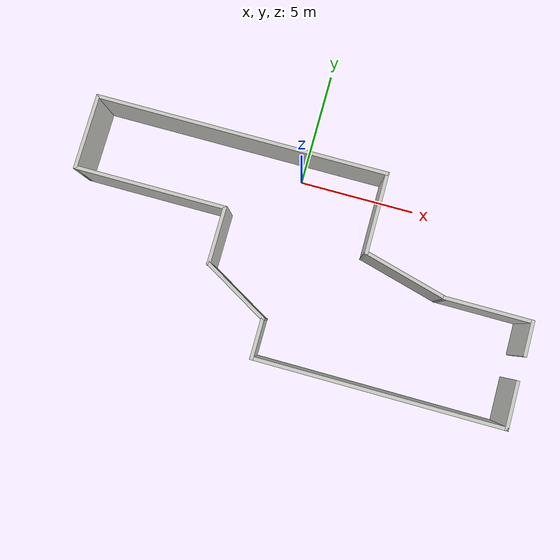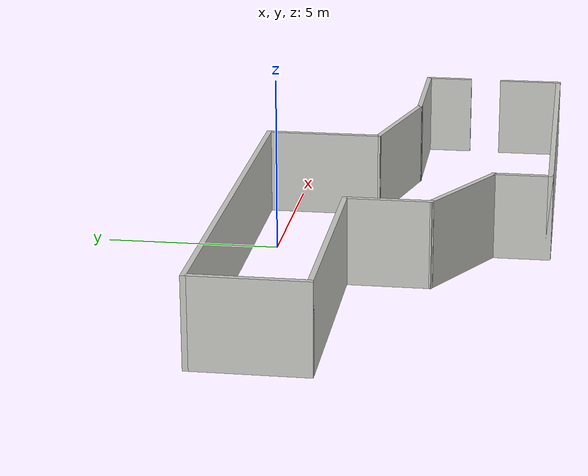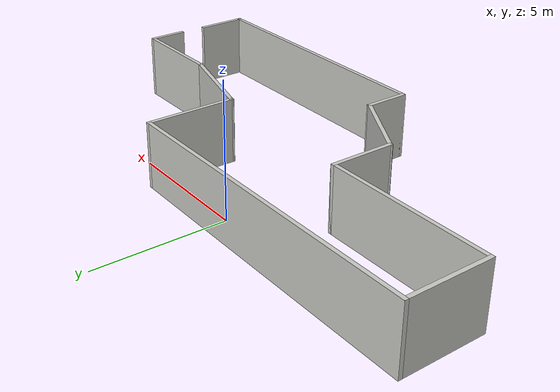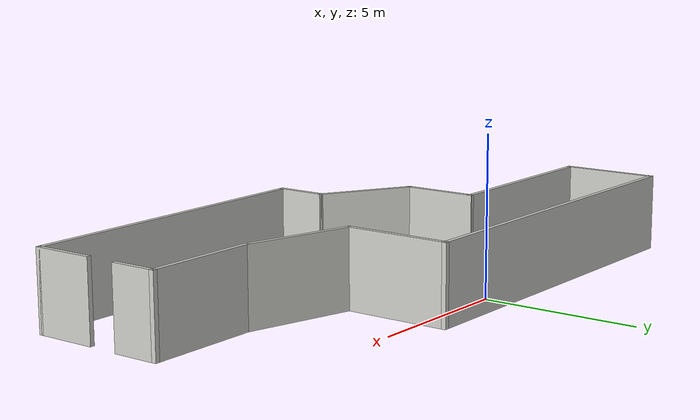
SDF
<?xml version='1.0'?>
<sdf version='1.7'>
  <model name='z-shaped-room'>
    <pose>0.751309 -3.50561 0 0 -0 0</pose>
    <link name='Wall_0'>
      <collision name='Wall_0_Collision'>
        <geometry>
          <box>
            <size>1.5 0.15 2.5</size>
          </box>
        </geometry>
        <pose>0 0 1.25 0 -0 0</pose>
      </collision>
      <visual name='Wall_0_Visual'>
        <pose>0 0 1.25 0 -0 0</pose>
        <geometry>
          <box>
            <size>1.5 0.15 2.5</size>
          </box>
        </geometry>
        <material>
          <script>
            <uri>file://media/materials/scripts/gazebo.material</uri>
            <name>Gazebo/CeilingTiled</name>
          </script>
          <ambient>1 1 1 1</ambient>
        </material>
        <meta>
          <layer>0</layer>
        </meta>
      </visual>
      <pose>9.71367 -0.656749 0 0 -0 1.5708</pose>
    </link>
    <link name='Wall_1'>
      <collision name='Wall_1_Collision'>
        <geometry>
          <box>
            <size>3.75 0.15 2.5</size>
          </box>
        </geometry>
        <pose>0 0 1.25 0 -0 0</pose>
      </collision>
      <visual name='Wall_1_Visual'>
        <pose>0 0 1.25 0 -0 0</pose>
        <geometry>
          <box>
            <size>3.75 0.15 2.5</size>
          </box>
        </geometry>
        <material>
          <script>
            <uri>file://media/materials/scripts/gazebo.material</uri>
            <name>Gazebo/CeilingTiled</name>
          </script>
          <ambient>1 1 1 1</ambient>
        </material>
        <meta>
          <layer>0</layer>
        </meta>
      </visual>
      <pose>7.91367 0.018251 0 0 -0 3.14159</pose>
    </link>
    <link name='Wall_10'>
      <collision name='Wall_10_Collision'>
        <geometry>
          <box>
            <size>10.5 0.15 2.5</size>
          </box>
        </geometry>
        <pose>0 0 1.25 0 -0 0</pose>
      </collision>
      <visual name='Wall_10_Visual'>
        <pose>0 0 1.25 0 -0 0</pose>
        <geometry>
          <box>
            <size>10.5 0.15 2.5</size>
          </box>
        </geometry>
        <material>
          <script>
            <uri>file://media/materials/scripts/gazebo.material</uri>
            <name>Gazebo/CeilingTiled</name>
          </script>
          <ambient>1 1 1 1</ambient>
        </material>
        <meta>
          <layer>0</layer>
        </meta>
      </visual>
      <pose>4.49601 -4.3 0 0 -0 0</pose>
    </link>
    <link name='Wall_11'>
      <collision name='Wall_11_Collision'>
        <geometry>
          <box>
            <size>2 0.15 2.5</size>
          </box>
        </geometry>
        <pose>0 0 1.25 0 -0 0</pose>
      </collision>
      <visual name='Wall_11_Visual'>
        <pose>0 0 1.25 0 -0 0</pose>
        <geometry>
          <box>
            <size>2 0.15 2.5</size>
          </box>
        </geometry>
        <material>
          <script>
            <uri>file://media/materials/scripts/gazebo.material</uri>
            <name>Gazebo/CeilingTiled</name>
          </script>
          <ambient>1 1 1 1</ambient>
        </material>
        <meta>
          <layer>0</layer>
        </meta>
      </visual>
      <pose>9.67101 -3.375 0 0 -0 1.5708</pose>
    </link>
    <link name='Wall_2'>
      <collision name='Wall_2_Collision'>
        <geometry>
          <box>
            <size>3.75 0.15 2.5</size>
          </box>
        </geometry>
        <pose>0 0 1.25 0 -0 0</pose>
      </collision>
      <visual name='Wall_2_Visual'>
        <pose>0 0 1.25 0 -0 0</pose>
        <geometry>
          <box>
            <size>3.75 0.15 2.5</size>
          </box>
        </geometry>
        <material>
          <script>
            <uri>file://media/materials/scripts/gazebo.material</uri>
            <name>Gazebo/CeilingTiled</name>
          </script>
          <ambient>1 1 1 1</ambient>
        </material>
        <meta>
          <layer>0</layer>
        </meta>
      </visual>
      <pose>4.375 0.484126 0 0 -0 2.87979</pose>
    </link>
    <link name='Wall_3'>
      <collision name='Wall_3_Collision'>
        <geometry>
          <box>
            <size>3.5 0.15 2.5</size>
          </box>
        </geometry>
        <pose>0 0 1.25 0 -0 0</pose>
      </collision>
      <visual name='Wall_3_Visual'>
        <pose>0 0 1.25 0 -0 0</pose>
        <geometry>
          <box>
            <size>3.5 0.15 2.5</size>
          </box>
        </geometry>
        <material>
          <script>
            <uri>file://media/materials/scripts/gazebo.material</uri>
            <name>Gazebo/CeilingTiled</name>
          </script>
          <ambient>1 1 1 1</ambient>
        </material>
        <meta>
          <layer>0</layer>
        </meta>
      </visual>
      <pose>2.63633 2.625 0 0 -0 1.5708</pose>
    </link>
    <link name='Wall_4'>
      <collision name='Wall_4_Collision'>
        <geometry>
          <box>
            <size>12.5 0.15 2.5</size>
          </box>
        </geometry>
        <pose>0 0 1.25 0 -0 0</pose>
      </collision>
      <visual name='Wall_4_Visual'>
        <pose>0 0 1.25 0 -0 0</pose>
        <geometry>
          <box>
            <size>12.5 0.15 2.5</size>
          </box>
        </geometry>
        <material>
          <script>
            <uri>file://media/materials/scripts/gazebo.material</uri>
            <name>Gazebo/CeilingTiled</name>
          </script>
          <ambient>1 1 1 1</ambient>
        </material>
        <meta>
          <layer>0</layer>
        </meta>
      </visual>
      <pose>-3.53867 4.3 0 0 -0 3.14159</pose>
    </link>
    <link name='Wall_5'>
      <collision name='Wall_5_Collision'>
        <geometry>
          <box>
            <size>3.25 0.15 2.5</size>
          </box>
        </geometry>
        <pose>0 0 1.25 0 -0 0</pose>
      </collision>
      <visual name='Wall_5_Visual'>
        <pose>0 0 1.25 0 -0 0</pose>
        <geometry>
          <box>
            <size>3.25 0.15 2.5</size>
          </box>
        </geometry>
        <material>
          <script>
            <uri>file://media/materials/scripts/gazebo.material</uri>
            <name>Gazebo/CeilingTiled</name>
          </script>
          <ambient>1 1 1 1</ambient>
        </material>
        <meta>
          <layer>0</layer>
        </meta>
      </visual>
      <pose>-9.71367 2.75 0 0 -0 -1.5708</pose>
    </link>
    <link name='Wall_6'>
      <collision name='Wall_6_Collision'>
        <geometry>
          <box>
            <size>6.5 0.15 2.5</size>
          </box>
        </geometry>
        <pose>0 0 1.25 0 -0 0</pose>
      </collision>
      <visual name='Wall_6_Visual'>
        <pose>0 0 1.25 0 -0 0</pose>
        <geometry>
          <box>
            <size>6.5 0.15 2.5</size>
          </box>
        </geometry>
        <material>
          <script>
            <uri>file://media/materials/scripts/gazebo.material</uri>
            <name>Gazebo/CeilingTiled</name>
          </script>
          <ambient>1 1 1 1</ambient>
        </material>
        <meta>
          <layer>0</layer>
        </meta>
      </visual>
      <pose>-6.53867 1.2 0 0 -0 0</pose>
    </link>
    <link name='Wall_7'>
      <collision name='Wall_7_Collision'>
        <geometry>
          <box>
            <size>2.5 0.15 2.5</size>
          </box>
        </geometry>
        <pose>0 0 1.25 0 -0 0</pose>
      </collision>
      <visual name='Wall_7_Visual'>
        <pose>0 0 1.25 0 -0 0</pose>
        <geometry>
          <box>
            <size>2.5 0.15 2.5</size>
          </box>
        </geometry>
        <material>
          <script>
            <uri>file://media/materials/scripts/gazebo.material</uri>
            <name>Gazebo/CeilingTiled</name>
          </script>
          <ambient>1 1 1 1</ambient>
        </material>
        <meta>
          <layer>0</layer>
        </meta>
      </visual>
      <pose>-3.36367 0.025 0 0 -0 -1.5708</pose>
    </link>
    <link name='Wall_8'>
      <collision name='Wall_8_Collision'>
        <geometry>
          <box>
            <size>3.25 0.15 2.5</size>
          </box>
        </geometry>
        <pose>0 0 1.25 0 -0 0</pose>
      </collision>
      <visual name='Wall_8_Visual'>
        <pose>0 0 1.25 0 -0 0</pose>
        <geometry>
          <box>
            <size>3.25 0.15 2.5</size>
          </box>
        </geometry>
        <material>
          <script>
            <uri>file://media/materials/scripts/gazebo.material</uri>
            <name>Gazebo/CeilingTiled</name>
          </script>
          <ambient>1 1 1 1</ambient>
        </material>
        <meta>
          <layer>0</layer>
        </meta>
      </visual>
      <pose>-2.02133 -1.925 0 0 -0 -0.523599</pose>
    </link>
    <link name='Wall_9'>
      <collision name='Wall_9_Collision'>
        <geometry>
          <box>
            <size>1.75 0.15 2.5</size>
          </box>
        </geometry>
        <pose>0 0 1.25 0 -0 0</pose>
      </collision>
      <visual name='Wall_9_Visual'>
        <pose>0 0 1.25 0 -0 0</pose>
        <geometry>
          <box>
            <size>1.75 0.15 2.5</size>
          </box>
        </geometry>
        <material>
          <script>
            <uri>file://media/materials/scripts/gazebo.material</uri>
            <name>Gazebo/CeilingTiled</name>
          </script>
          <ambient>1 1 1 1</ambient>
        </material>
        <meta>
          <layer>0</layer>
        </meta>
      </visual>
      <pose>-0.678988 -3.5 0 0 -0 -1.5708</pose>
    </link>
    <static>1</static>
  </model>
</sdf>
